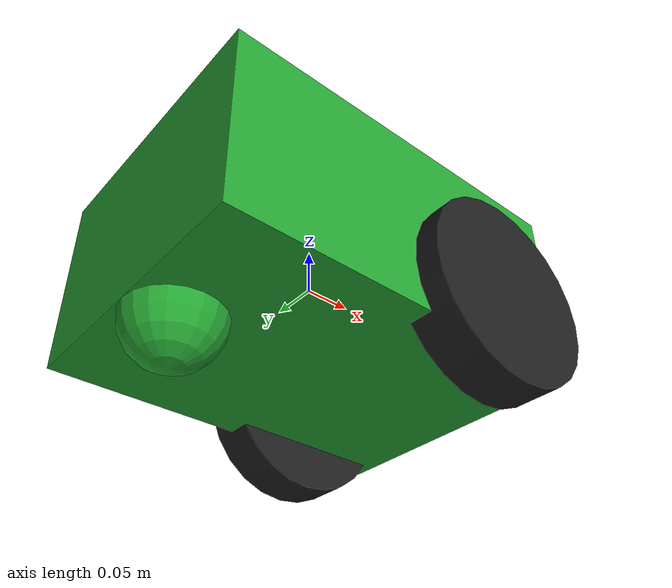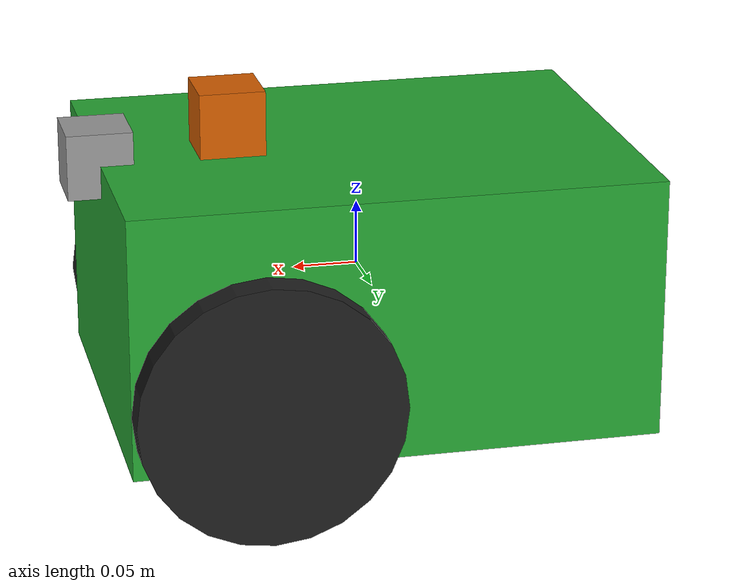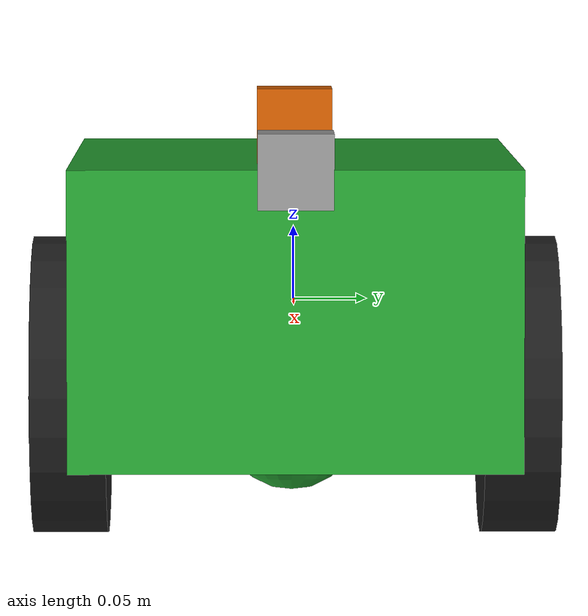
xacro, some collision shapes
<?xml version='1.0'?>

<robot name="my_robot" xmlns:xacro="http://www.ros.org/wiki/xacro">

  <xacro:include filename="$(find my_robot)/urdf/my_robot.gazebo" />

  <link name="robot_footprint"></link>

  <joint name="robot_footprint_joint" type="fixed">
    <origin xyz="0 0 0" rpy="0 0 0" />
    <parent link="robot_footprint"/>
    <child link="chassis" />
  </joint>

  <link name='chassis'>
    <pose>0 0 0.3 0 0 0</pose>

    <inertial>
      <mass value="10.0"/>
      <origin xyz="0.0 0 0" rpy=" 0 0 0"/>
      <inertia
          ixx="0.1" ixy="0" ixz="0"
          iyy="0.1" iyz="0"
          izz="0.1"
      />
    </inertial>

    <collision name='chassis_collision'>
      <origin xyz="0 0 0" rpy=" 0 0 0"/>
      <geometry>
        <box size=".4 .3 .2"/>
      </geometry>
    </collision>

    <visual name='chassis_visual'>
      <origin xyz="0 0 0" rpy=" 0 0 0"/>
      <geometry>
        <box size=".4 .3 .2"/>
      </geometry>
    </visual>

    <collision name='back_caster_collision'>
      <origin xyz="-0.15 0 -0.1" rpy=" 0 0 0"/>
      <geometry>
        <sphere radius="0.05"/>
      </geometry>
    </collision>

    <visual name='back_caster_visual'>
      <origin xyz="-0.15 0 -0.1" rpy=" 0 0 0"/>
      <geometry>
        <sphere radius="0.05"/>
      </geometry>
    </visual>

  </link>

  <joint name="right_wheel_hinge" type="continuous">
    <origin xyz="0.1 -0.15 -0.05" rpy="0 0 0" />
    <parent link="chassis"/>
    <child link="right_wheel" />
    <axis xyz="0 1 0" rpy="0 0 0"/>
    <limit effort="10000" velocity="1000"/>
    <dynamics damping="1.0" friction="1.0"/>
  </joint>

  <link name='right_wheel'>

    <inertial>
      <mass value="2.0"/>
      <origin xyz="0 0 0" rpy=" 0 1.5707 1.5707"/>
      <inertia
          ixx="0.1" ixy="0" ixz="0"
          iyy="0.1" iyz="0"
          izz="0.1"
      />
    </inertial>

    <collision name='right_wheel_collision'>
      <origin xyz="0 0 0" rpy=" 0 1.5707 1.5707"/>
      <geometry>
        <cylinder length="0.05" radius="0.1"/>
      </geometry>
    </collision>

    <visual name='right_wheel_visual'>
      <origin xyz="0 0 0" rpy=" 0 1.5707 1.5707"/>
      <geometry>
        <cylinder length="0.05" radius="0.1"/>
      </geometry>
    </visual>
  </link>

  <joint name="left_wheel_hinge" type="continuous">
    <origin xyz="0.1 0.15 -0.05" rpy="0 0 0" />
    <parent link="chassis"/>
    <child link="left_wheel" />
    <axis xyz="0 1 0" rpy="0 0 0"/>
    <limit effort="10000" velocity="1000"/>
    <dynamics damping="1.0" friction="1.0"/>
  </joint>

  <link name='left_wheel'>

    <inertial>
      <mass value="2.0"/>
      <origin xyz="0 0 0" rpy=" 0 1.5707 1.5707"/>
      <inertia
          ixx="0.1" ixy="0" ixz="0"
          iyy="0.1" iyz="0"
          izz="0.1"
      />
    </inertial>

    <collision name='left_wheel_collision'>
      <origin xyz="0 0 0" rpy=" 0 1.5707 1.5707"/>
      <geometry>
        <cylinder length="0.05" radius="0.1"/>
      </geometry>
    </collision>

    <visual name='left_wheel_visual'>
      <origin xyz="0 0 0" rpy=" 0 1.5707 1.5707"/>
      <geometry>
        <cylinder length="0.05" radius="0.1"/>
      </geometry>
    </visual>
  </link>

  <joint name="camera_joint" type="fixed">
    <origin xyz="0.2 0 0.1" rpy="0 0 0" />
    <parent link="chassis"/>
    <child link="camera" />
    <axis xyz="0 1 0" rpy="0 0 0"/>
  </joint>

  <link name='camera'>

    <inertial>
      <mass value="0.1"/>
      <origin xyz="0 0 0" rpy=" 0 0 0"/>
      <inertia
          ixx="1e-6" ixy="0" ixz="0"
          iyy="1e-6" iyz="0"
          izz="1e-6"
      />
    </inertial>

    <collision name='camera_collision'>
      <origin xyz="0 0 0" rpy=" 0 0 0"/>
      <geometry>
        <box size="0.05 0.05 0.05"/>
      </geometry>
    </collision>

    <visual name='camera_visual'>
      <origin xyz="0 0 0" rpy=" 0 0 0"/>
      <geometry>
        <box size="0.05 0.05 0.05"/>
      </geometry>
    </visual>
  </link>

  <joint name="hokuyo_joint" type="fixed">
    <origin xyz="0.1 0 0.125" rpy="0 0 0" />
    <parent link="chassis"/>
    <child link="hokuyo" />
    <axis xyz="0 1 0" rpy="0 0 0"/>
  </joint>

  <link name='hokuyo'>

    <inertial>
      <mass value="1e-5"/>
      <origin xyz="0 0 0" rpy=" 0 0 0"/>
      <inertia
          ixx="1e-6" ixy="0" ixz="0"
          iyy="1e-6" iyz="0"
          izz="1e-6"
      />
    </inertial>

    <collision name='hokuyo_collision'>
      <origin xyz="0 0 0" rpy=" 0 0 0"/>
      <geometry>
        <box size="0.05 0.05 0.05"/>
      </geometry>
    </collision>

    <visual name='hokuyo_visual'>
      <origin xyz="0 0 0" rpy=" 0 0 0"/>
      <geometry>
        <mesh filename="package://my_robot/meshes/hokuyo.dae"/>
      </geometry>
    </visual>
  </link>

  <gazebo reference="chassis">
    <material>Gazebo/Green</material>
  </gazebo>

  <gazebo reference="camera">
    <material>Gazebo/Grey</material>
  </gazebo>

  <gazebo reference="left_wheel">
    <material>Gazebo/Black</material>
  </gazebo>

  <gazebo reference="right_wheel">
    <material>Gazebo/Black</material>
  </gazebo>

</robot>
